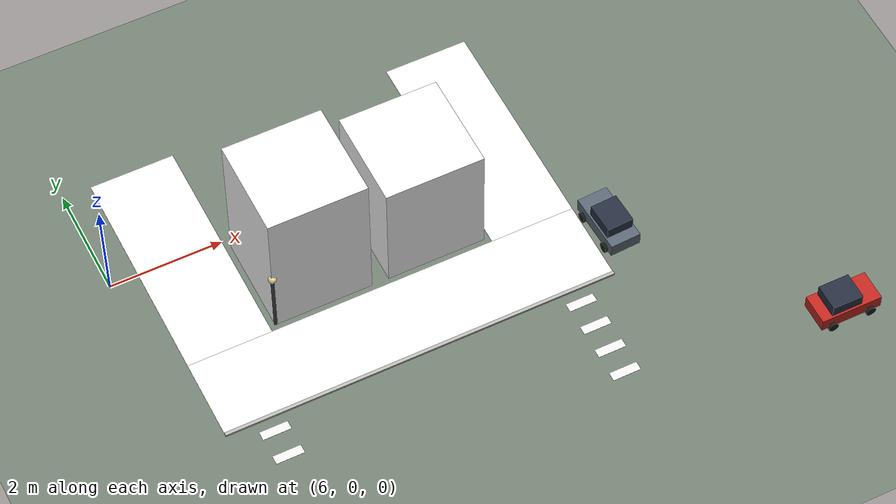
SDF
<sdf version="1.9">
 <world name="limo_city_blocks">
  <model name="ground_plane">
   <static>true</static>
   <link name="link">
    <collision name="collision">
     <geometry><plane><normal>0 0 1</normal><size>53 53</size></plane></geometry>
     <surface><friction><ode><mu>0.8</mu><mu2>0.8</mu2></ode></friction></surface>
    </collision>
    <visual name="visual">
     <geometry><plane><normal>0 0 1</normal><size>53 53</size></plane></geometry>
     <material><ambient>0.45 0.5 0.45 1</ambient><diffuse>0.45 0.5 0.45 1</diffuse></material>
    </visual>
   </link>
  </model>
  <model name="walk_s_2_1">
   <static>true</static>
   <pose>10.000 -2.750 0.008 0 0 0.000</pose>
   <link name="link">
    <visual name="visual">
     <geometry><box><size>7.000 1.500 0.012</size></box></geometry>
     <material>
      <ambient>1 1 1 1</ambient>
      <diffuse>1 1 1 1</diffuse>
      <pbr>
       <metal>
        <albedo_map>model://city_textures/paving.png</albedo_map>
        <roughness>0.85</roughness>
        <metalness>0.0</metalness>
       </metal>
      </pbr>
     </material>
    </visual>
   </link>
  </model>
  <model name="walk_w_2_1">
   <static>true</static>
   <pose>7.250 0.000 0.008 0 0 0.000</pose>
   <link name="link">
    <visual name="visual">
     <geometry><box><size>1.500 4.000 0.012</size></box></geometry>
     <material>
      <ambient>1 1 1 1</ambient>
      <diffuse>1 1 1 1</diffuse>
      <pbr>
       <metal>
        <albedo_map>model://city_textures/paving.png</albedo_map>
        <roughness>0.85</roughness>
        <metalness>0.0</metalness>
       </metal>
      </pbr>
     </material>
    </visual>
   </link>
  </model>
  <model name="walk_e_2_1">
   <static>true</static>
   <pose>12.750 0.000 0.008 0 0 0.000</pose>
   <link name="link">
    <visual name="visual">
     <geometry><box><size>1.500 4.000 0.012</size></box></geometry>
     <material>
      <ambient>1 1 1 1</ambient>
      <diffuse>1 1 1 1</diffuse>
      <pbr>
       <metal>
        <albedo_map>model://city_textures/paving.png</albedo_map>
        <roughness>0.85</roughness>
        <metalness>0.0</metalness>
       </metal>
      </pbr>
     </material>
    </visual>
   </link>
  </model>
  <model name="curb_s_2_1">
   <static>true</static>
   <pose>10.000 -3.470 0.020 0 0 0.000</pose>
   <link name="link">
    <visual name="visual">
     <geometry><box><size>7.000 0.060 0.040</size></box></geometry>
     <material><ambient>0.72 0.72 0.7 1</ambient><diffuse>0.72 0.72 0.7 1</diffuse></material>
    </visual>
   </link>
  </model>
  <model name="lamp_14">
   <static>true</static>
   <pose>8.120 -1.880 0 0 0 0</pose>
   <link name="link">
    <collision name="collision">
     <pose>0 0 0.6 0 0 0</pose>
     <geometry><cylinder><radius>0.03</radius><length>1.2</length></cylinder></geometry>
    </collision>
    <visual name="pole">
     <pose>0 0 0.6 0 0 0</pose>
     <geometry><cylinder><radius>0.03</radius><length>1.2</length></cylinder></geometry>
     <material><ambient>0.2 0.2 0.22 1</ambient><diffuse>0.25 0.25 0.28 1</diffuse></material>
    </visual>
    <visual name="head">
     <pose>0 0 1.25 0 0 0</pose>
     <geometry><sphere><radius>0.07</radius></sphere></geometry>
     <material>
      <ambient>0.9 0.85 0.6 1</ambient>
      <diffuse>0.95 0.9 0.65 1</diffuse>
      <emissive>0.5 0.45 0.25 1</emissive>
     </material>
    </visual>
   </link>
  </model>
  <model name="zebra_16_4">
   <static>true</static>
   <pose>7.250 -4.250 0.013 0 0 0.000</pose>
   <link name="link">
    <visual name="visual">
     <geometry><box><size>0.500 0.160 0.002</size></box></geometry>
     <material><ambient>0.92 0.92 0.92 1</ambient><diffuse>0.92 0.92 0.92 1</diffuse></material>
    </visual>
   </link>
  </model>
  <model name="zebra_16_5">
   <static>true</static>
   <pose>7.250 -3.750 0.013 0 0 0.000</pose>
   <link name="link">
    <visual name="visual">
     <geometry><box><size>0.500 0.160 0.002</size></box></geometry>
     <material><ambient>0.92 0.92 0.92 1</ambient><diffuse>0.92 0.92 0.92 1</diffuse></material>
    </visual>
   </link>
  </model>
  <model name="zebra_17_2">
   <static>true</static>
   <pose>12.750 -5.250 0.013 0 0 0.000</pose>
   <link name="link">
    <visual name="visual">
     <geometry><box><size>0.500 0.160 0.002</size></box></geometry>
     <material><ambient>0.92 0.92 0.92 1</ambient><diffuse>0.92 0.92 0.92 1</diffuse></material>
    </visual>
   </link>
  </model>
  <model name="zebra_17_3">
   <static>true</static>
   <pose>12.750 -4.750 0.013 0 0 0.000</pose>
   <link name="link">
    <visual name="visual">
     <geometry><box><size>0.500 0.160 0.002</size></box></geometry>
     <material><ambient>0.92 0.92 0.92 1</ambient><diffuse>0.92 0.92 0.92 1</diffuse></material>
    </visual>
   </link>
  </model>
  <model name="zebra_17_4">
   <static>true</static>
   <pose>12.750 -4.250 0.013 0 0 0.000</pose>
   <link name="link">
    <visual name="visual">
     <geometry><box><size>0.500 0.160 0.002</size></box></geometry>
     <material><ambient>0.92 0.92 0.92 1</ambient><diffuse>0.92 0.92 0.92 1</diffuse></material>
    </visual>
   </link>
  </model>
  <model name="zebra_17_5">
   <static>true</static>
   <pose>12.750 -3.750 0.013 0 0 0.000</pose>
   <link name="link">
    <visual name="visual">
     <geometry><box><size>0.500 0.160 0.002</size></box></geometry>
     <material><ambient>0.92 0.92 0.92 1</ambient><diffuse>0.92 0.92 0.92 1</diffuse></material>
    </visual>
   </link>
  </model>
  <model name="building_10">
   <static>true</static>
   <pose>8.975 -1.025 1.336 0 0 0.000</pose>
   <link name="link">
    <collision name="collision"><geometry><box><size>1.750 1.750 2.671</size></box></geometry></collision>
    <visual name="visual">
     <geometry><box><size>1.750 1.750 2.671</size></box></geometry>
     <material>
      <ambient>1 1 1 1</ambient>
      <diffuse>1 1 1 1</diffuse>
      <pbr>
       <metal>
        <albedo_map>model://city_textures/facade_3.png</albedo_map>
        <roughness>0.85</roughness>
        <metalness>0.0</metalness>
       </metal>
      </pbr>
     </material>
    </visual>
   </link>
  </model>
  <model name="building_11">
   <static>true</static>
   <pose>11.025 -1.025 1.112 0 0 0.000</pose>
   <link name="link">
    <collision name="collision"><geometry><box><size>1.750 1.750 2.223</size></box></geometry></collision>
    <visual name="visual">
     <geometry><box><size>1.750 1.750 2.223</size></box></geometry>
     <material>
      <ambient>1 1 1 1</ambient>
      <diffuse>1 1 1 1</diffuse>
      <pbr>
       <metal>
        <albedo_map>model://city_textures/facade_1.png</albedo_map>
        <roughness>0.85</roughness>
        <metalness>0.0</metalness>
       </metal>
      </pbr>
     </material>
    </visual>
   </link>
  </model>
  <model name="vehicle_0_car">
   <static>false</static>
   <pose>16.500 -5.750 0 0 0 0.000</pose>
   <link name="body">
    <kinematic>true</kinematic>
    <collision name="collision">
     <pose>0 0 0.2 0 0 0</pose>
     <geometry><box><size>1.10 0.55 0.40</size></box></geometry>
    </collision>
    <visual name="body_v">
     <pose>0 0 0.20 0 0 0</pose>
     <geometry><box><size>1.10 0.55 0.24</size></box></geometry>
     <material>
      <ambient>0.75 0.15 0.12 1</ambient>
      <diffuse>0.75 0.15 0.12 1</diffuse>
      <specular>0.4 0.4 0.4 1</specular>
     </material>
    </visual>
    <visual name="cabin">
     <pose>-0.08 0 0.42 0 0 0</pose>
     <geometry><box><size>0.55 0.48 0.22</size></box></geometry>
     <material>
      <ambient>0.12 0.15 0.2 1</ambient>
      <diffuse>0.15 0.18 0.25 1</diffuse>
      <specular>0.5 0.5 0.55 1</specular>
     </material>
    </visual>
    <visual name="wheel_0">
     <pose>0.35 0.29 0.09 1.5707 0 0</pose>
     <geometry><cylinder><radius>0.09</radius><length>0.06</length></cylinder></geometry>
     <material><ambient>0.08 0.08 0.08 1</ambient><diffuse>0.1 0.1 0.1 1</diffuse></material>
    </visual>
    <visual name="wheel_1">
     <pose>0.35 -0.29 0.09 1.5707 0 0</pose>
     <geometry><cylinder><radius>0.09</radius><length>0.06</length></cylinder></geometry>
     <material><ambient>0.08 0.08 0.08 1</ambient><diffuse>0.1 0.1 0.1 1</diffuse></material>
    </visual>
    <visual name="wheel_2">
     <pose>-0.35 0.29 0.09 1.5707 0 0</pose>
     <geometry><cylinder><radius>0.09</radius><length>0.06</length></cylinder></geometry>
     <material><ambient>0.08 0.08 0.08 1</ambient><diffuse>0.1 0.1 0.1 1</diffuse></material>
    </visual>
    <visual name="wheel_3">
     <pose>-0.35 -0.29 0.09 1.5707 0 0</pose>
     <geometry><cylinder><radius>0.09</radius><length>0.06</length></cylinder></geometry>
     <material><ambient>0.08 0.08 0.08 1</ambient><diffuse>0.1 0.1 0.1 1</diffuse></material>
    </visual>
   </link>
   <plugin filename="gz-sim-velocity-control-system" name="gz::sim::systems::VelocityControl"/>
   <plugin filename="gz-sim-pose-publisher-system" name="gz::sim::systems::PosePublisher">
    <publish_model_pose>true</publish_model_pose>
    <publish_link_pose>false</publish_link_pose>
    <publish_collision_pose>false</publish_collision_pose>
    <publish_visual_pose>false</publish_visual_pose>
    <publish_sensor_pose>false</publish_sensor_pose>
    <use_pose_vector_msg>false</use_pose_vector_msg>
    <update_frequency>15</update_frequency>
   </plugin>
  </model>
  <model name="parked_car_1">
   <static>true</static>
   <pose>13.850 -2.622 0 0 0 1.617</pose>
   <link name="body">
    <collision name="collision">
     <pose>0 0 0.2 0 0 0</pose>
     <geometry><box><size>1.10 0.55 0.40</size></box></geometry>
    </collision>
    <visual name="body_v">
     <pose>0 0 0.20 0 0 0</pose>
     <geometry><box><size>1.10 0.55 0.24</size></box></geometry>
     <material>
      <ambient>0.35 0.4 0.45 1</ambient>
      <diffuse>0.35 0.4 0.45 1</diffuse>
      <specular>0.4 0.4 0.4 1</specular>
     </material>
    </visual>
    <visual name="cabin">
     <pose>-0.08 0 0.42 0 0 0</pose>
     <geometry><box><size>0.55 0.48 0.22</size></box></geometry>
     <material>
      <ambient>0.12 0.15 0.2 1</ambient>
      <diffuse>0.15 0.18 0.25 1</diffuse>
      <specular>0.5 0.5 0.55 1</specular>
     </material>
    </visual>
    <visual name="wheel_0">
     <pose>0.35 0.29 0.09 1.5707 0 0</pose>
     <geometry><cylinder><radius>0.09</radius><length>0.06</length></cylinder></geometry>
     <material><ambient>0.08 0.08 0.08 1</ambient><diffuse>0.1 0.1 0.1 1</diffuse></material>
    </visual>
    <visual name="wheel_1">
     <pose>0.35 -0.29 0.09 1.5707 0 0</pose>
     <geometry><cylinder><radius>0.09</radius><length>0.06</length></cylinder></geometry>
     <material><ambient>0.08 0.08 0.08 1</ambient><diffuse>0.1 0.1 0.1 1</diffuse></material>
    </visual>
    <visual name="wheel_2">
     <pose>-0.35 0.29 0.09 1.5707 0 0</pose>
     <geometry><cylinder><radius>0.09</radius><length>0.06</length></cylinder></geometry>
     <material><ambient>0.08 0.08 0.08 1</ambient><diffuse>0.1 0.1 0.1 1</diffuse></material>
    </visual>
    <visual name="wheel_3">
     <pose>-0.35 -0.29 0.09 1.5707 0 0</pose>
     <geometry><cylinder><radius>0.09</radius><length>0.06</length></cylinder></geometry>
     <material><ambient>0.08 0.08 0.08 1</ambient><diffuse>0.1 0.1 0.1 1</diffuse></material>
    </visual>
   </link>
  </model>
 </world>
</sdf>
